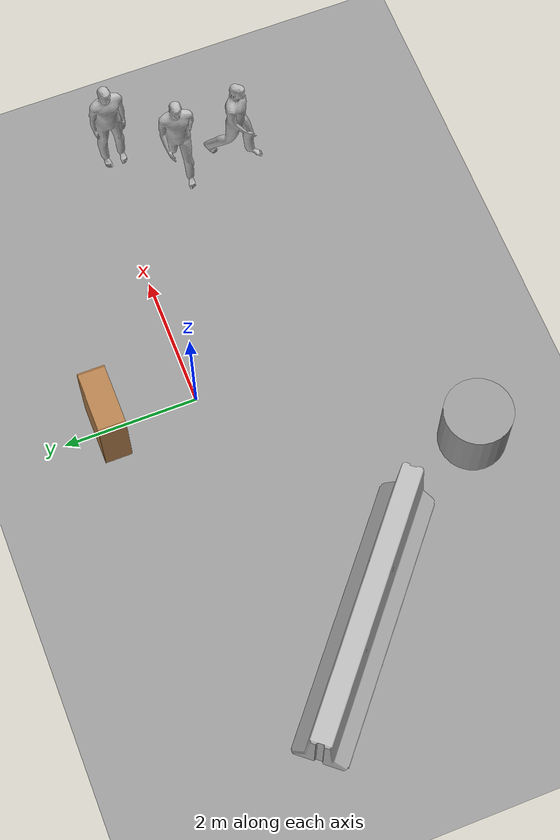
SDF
<sdf version="1.4">
 <world name="default">
  <light name="sun" type="directional">
   <pose>0 0 10 0 -0 0</pose>
   <diffuse>0.8 0.8 0.8 1</diffuse>
   <specular>0.2 0.2 0.2 1</specular>
   <attenuation>
    <range>1000</range>
    <constant>0.9</constant>
    <linear>0.01</linear>
    <quadratic>0.001</quadratic>
   </attenuation>
   <direction>0.5 0.1 -0.9</direction>
  </light>
  <scene><ambient>0.4 0.4 0.4 1</ambient><background>0.7 0.7 0.7 1</background><shadows>1</shadows></scene>
  <physics type="ode">
   <max_step_size>0.01</max_step_size>
   <real_time_factor>1</real_time_factor>
   <real_time_update_rate>100</real_time_update_rate>
   <gravity>0 0 -9.8</gravity>
  </physics>
  <model name="bookshelf">
   <static>1</static>
   <link name="link">
    <inertial><mass>1</mass></inertial>
    <collision name="back">
     <pose>0 0.005 0.6 0 -0 0</pose>
     <geometry><box><size>0.9 0.01 1.2</size></box></geometry>
    </collision>
    <visual name="visual1">
     <pose>0 0.005 0.6 0 -0 0</pose>
     <geometry><box><size>0.9 0.01 1.2</size></box></geometry>
     <material>
      <script><uri>file://media/materials/scripts/gazebo.material</uri><name>Gazebo/Wood</name></script>
     </material>
    </visual>
    <collision name="left_side">
     <pose>0.45 -0.195 0.6 0 -0 0</pose>
     <geometry><box><size>0.02 0.4 1.2</size></box></geometry>
    </collision>
    <visual name="visual2">
     <pose>0.45 -0.195 0.6 0 -0 0</pose>
     <geometry><box><size>0.02 0.4 1.2</size></box></geometry>
     <material>
      <script><uri>file://media/materials/scripts/gazebo.material</uri><name>Gazebo/Wood</name></script>
     </material>
    </visual>
    <collision name="right_side">
     <pose>-0.45 -0.195 0.6 0 -0 0</pose>
     <geometry><box><size>0.02 0.4 1.2</size></box></geometry>
    </collision>
    <visual name="visual3">
     <pose>-0.45 -0.195 0.6 0 -0 0</pose>
     <geometry><box><size>0.02 0.4 1.2</size></box></geometry>
     <material>
      <script><uri>file://media/materials/scripts/gazebo.material</uri><name>Gazebo/Wood</name></script>
     </material>
    </visual>
    <collision name="bottom">
     <pose>0 -0.195 0.03 0 -0 0</pose>
     <geometry><box><size>0.88 0.4 0.06</size></box></geometry>
    </collision>
    <visual name="visual4">
     <pose>0 -0.195 0.03 0 -0 0</pose>
     <geometry><box><size>0.88 0.4 0.06</size></box></geometry>
     <material>
      <script><uri>file://media/materials/scripts/gazebo.material</uri><name>Gazebo/Wood</name></script>
     </material>
    </visual>
    <collision name="top">
     <pose>0 -0.195 1.19 0 -0 0</pose>
     <geometry><box><size>0.88 0.4 0.02</size></box></geometry>
    </collision>
    <visual name="visual5">
     <pose>0 -0.195 1.19 0 -0 0</pose>
     <geometry><box><size>0.88 0.4 0.02</size></box></geometry>
     <material>
      <script><uri>file://media/materials/scripts/gazebo.material</uri><name>Gazebo/Wood</name></script>
     </material>
    </visual>
    <collision name="low_shelf">
     <pose>0 -0.195 0.43 0 -0 0</pose>
     <geometry><box><size>0.88 0.4 0.02</size></box></geometry>
    </collision>
    <visual name="visual6">
     <pose>0 -0.195 0.43 0 -0 0</pose>
     <geometry><box><size>0.88 0.4 0.02</size></box></geometry>
     <material>
      <script><uri>file://media/materials/scripts/gazebo.material</uri><name>Gazebo/Wood</name></script>
     </material>
    </visual>
    <collision name="high_shelf">
     <pose>0 -0.195 0.8 0 -0 0</pose>
     <geometry><box><size>0.88 0.4 0.02</size></box></geometry>
    </collision>
    <visual name="visual7">
     <pose>0 -0.195 0.8 0 -0 0</pose>
     <geometry><box><size>0.88 0.4 0.02</size></box></geometry>
     <material>
      <script><uri>file://media/materials/scripts/gazebo.material</uri><name>Gazebo/Wood</name></script>
     </material>
    </visual>
    <velocity_decay><linear>0</linear><angular>0</angular></velocity_decay>
   </link>
   <pose>0 1.53026 0 0 -0 0</pose>
  </model>
  <model name="jersey_barrier">
   <static>1</static>
   <link name="link">
    <visual name="visual">
     <geometry><mesh><uri>model://jersey_barrier/meshes/jersey_barrier.dae</uri></mesh></geometry>
    </visual>
    <collision name="upright">
     <pose>0 0 0.5715 0 -0 0</pose>
     <geometry><box><size>4.06542 0.3063 1.143</size></box></geometry>
    </collision>
    <collision name="base">
     <pose>0 0 0.032258 0 -0 0</pose>
     <geometry><box><size>4.06542 0.8107 0.064516</size></box></geometry>
    </collision>
    <collision name="base2">
     <pose>0 0 0.1 0 -0 0</pose>
     <geometry><box><size>4.06542 0.65 0.1</size></box></geometry>
    </collision>
    <collision name="base3">
     <pose>0 0 0.2 0 -0 0</pose>
     <geometry><box><size>4.06542 0.5 0.1</size></box></geometry>
    </collision>
    <collision name="left-angle">
     <pose>0 -0.224 0.2401 0.9 -0 0</pose>
     <geometry><box><size>4.06542 0.5 0.064516</size></box></geometry>
    </collision>
    <collision name="right-angle">
     <pose>0 0.224 0.2401 -0.9 0 0</pose>
     <geometry><box><size>4.06542 0.5 0.064516</size></box></geometry>
    </collision>
    <velocity_decay><linear>0</linear><angular>0</angular></velocity_decay>
   </link>
   <pose>-4 -1 0 0 0 -0.7</pose>
  </model>
  <model name="ground_plane_0">
   <static>1</static>
   <link name="link">
    <collision name="collision">
     <geometry><plane><normal>0 0 1</normal><size>100 100</size></plane></geometry>
     <surface><friction><ode><mu>100</mu><mu2>50</mu2></ode></friction></surface>
    </collision>
    <visual name="visual">
     <cast_shadows>0</cast_shadows>
     <geometry><plane><normal>0 0 1</normal><size>100 100</size></plane></geometry>
     <material>
      <script><uri>file://media/materials/scripts/gazebo.material</uri><name>Gazebo/Grey</name></script>
     </material>
    </visual>
    <velocity_decay><linear>0</linear><angular>0</angular></velocity_decay>
   </link>
   <pose>0.497681 0 0 0 -0 0</pose>
  </model>
  <model name="unit_cylinder_1">
   <pose>-2 -3.4888 0.49912 -0 -0 -0</pose>
   <link name="link">
    <inertial>
     <mass>1</mass>
     <inertia><ixx>1</ixx><ixy>0</ixy><ixz>0</ixz><iyy>1</iyy><iyz>0</iyz><izz>1</izz></inertia>
    </inertial>
    <collision name="collision">
     <geometry><cylinder><radius>0.5</radius><length>1</length></cylinder></geometry>
    </collision>
    <visual name="visual">
     <geometry><cylinder><radius>0.5</radius><length>1</length></cylinder></geometry>
     <material>
      <script><uri>file://media/materials/scripts/gazebo.material</uri><name>Gazebo/Grey</name></script>
     </material>
    </visual>
    <velocity_decay><linear>0</linear><angular>0</angular></velocity_decay>
   </link>
   <static>0</static>
  </model>
  <spherical_coordinates>
   <surface_model>EARTH_WGS84</surface_model>
   <latitude_deg>0</latitude_deg>
   <longitude_deg>0</longitude_deg>
   <elevation>0</elevation>
   <heading_deg>0</heading_deg>
  </spherical_coordinates>
  <model name="person_walking">
   <link name="link">
    <inertial>
     <pose>0 0 0.95 0 -0 0</pose>
     <mass>80</mass>
     <inertia><ixx>27.82</ixx><ixy>0</ixy><ixz>0</ixz><iyy>24.88</iyy><iyz>0</iyz><izz>4.57</izz></inertia>
    </inertial>
    <collision name="bottom">
     <pose>0 0 0.01 0 -0 0</pose>
     <geometry><box><size>0.35 0.75 0.02</size></box></geometry>
    </collision>
    <collision name="person">
     <pose>0 0 -0.02 0 -0 0</pose>
     <geometry><mesh><uri>model://person_walking/meshes/walking.dae</uri></mesh></geometry>
    </collision>
    <visual name="visual">
     <pose>0 0 -0.02 0 -0 0</pose>
     <geometry><mesh><uri>model://person_walking/meshes/walking.dae</uri></mesh></geometry>
    </visual>
    <velocity_decay><linear>0</linear><angular>0</angular></velocity_decay>
   </link>
   <pose>3.69862 -1.1159 4e-05 -0.000109 -1.7e-05 -1.69175</pose>
   <static>0</static>
  </model>
  <model name="person_standing">
   <link name="link">
    <inertial>
     <pose>0 -0.1 0.95 0 -0 0</pose>
     <mass>80</mass>
     <inertia><ixx>24.88</ixx><ixy>0</ixy><ixz>0</ixz><iyy>25.73</iyy><iyz>0</iyz><izz>2.48</izz></inertia>
    </inertial>
    <collision name="bottom">
     <pose>0 -0.1 0.01 0 -0 0</pose>
     <geometry><box><size>0.5 0.35 0.02</size></box></geometry>
    </collision>
    <collision name="person">
     <pose>0 0 0.02 0.04 -0 0</pose>
     <geometry><mesh><uri>model://person_standing/meshes/standing.dae</uri></mesh></geometry>
    </collision>
    <visual name="visual">
     <pose>0 0 0.02 0.04 -0 0</pose>
     <geometry><mesh><uri>model://person_standing/meshes/standing.dae</uri></mesh></geometry>
    </visual>
    <velocity_decay><linear>0</linear><angular>0</angular></velocity_decay>
   </link>
   <pose>4.32764 -0.227765 -3.9e-05 0.000156 -0.000109 -1.5459</pose>
   <static>0</static>
  </model>
  <model name="person_walking_0">
   <link name="link">
    <inertial>
     <pose>0 0 0.95 0 -0 0</pose>
     <mass>80</mass>
     <inertia><ixx>27.82</ixx><ixy>0</ixy><ixz>0</ixz><iyy>24.88</iyy><iyz>0</iyz><izz>4.57</izz></inertia>
    </inertial>
    <collision name="bottom">
     <pose>0 0 0.01 0 -0 0</pose>
     <geometry><box><size>0.35 0.75 0.02</size></box></geometry>
    </collision>
    <collision name="person">
     <pose>0 0 -0.02 0 -0 0</pose>
     <geometry><mesh><uri>model://person_walking/meshes/walking.dae</uri></mesh></geometry>
    </collision>
    <visual name="visual">
     <pose>0 0 -0.02 0 -0 0</pose>
     <geometry><mesh><uri>model://person_walking/meshes/walking.dae</uri></mesh></geometry>
    </visual>
    <velocity_decay><linear>0</linear><angular>0</angular></velocity_decay>
   </link>
   <pose>3.64757 -2.00131 -8.3e-05 -0.00018 8.6e-05 -0.701205</pose>
   <static>0</static>
  </model>
 </world>
</sdf>
